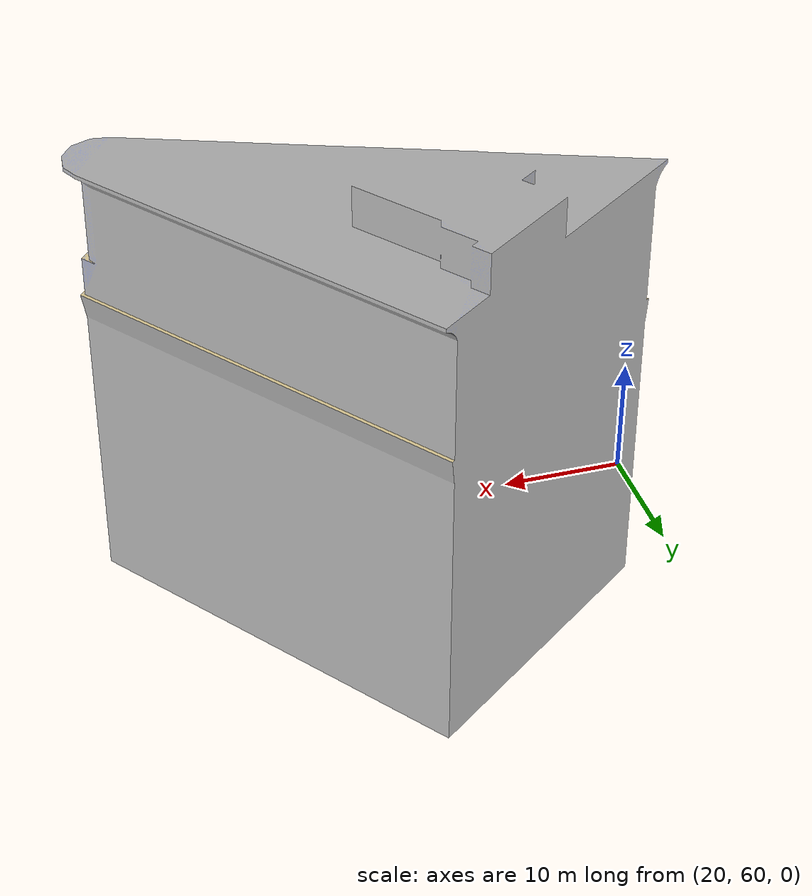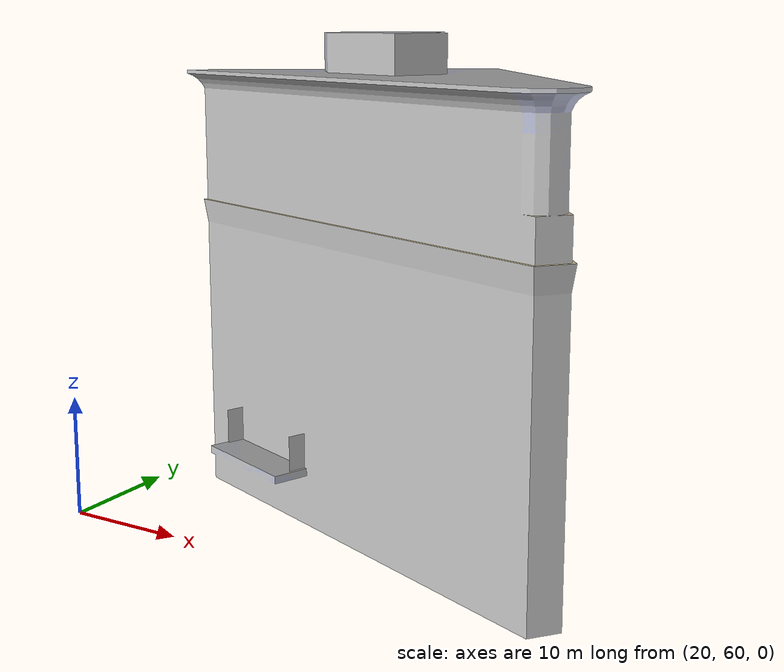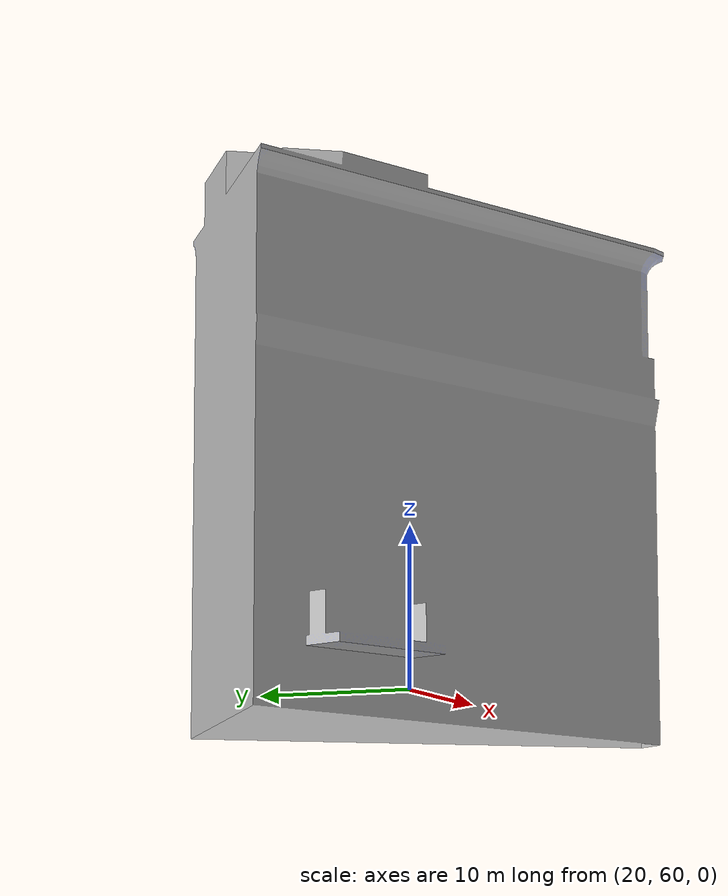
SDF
<?xml version="1.0" ?>
<sdf version="1.5">
  <model name="House 4">
    <link name="link">
      <collision name="collision">
        <geometry>
          <mesh>
            <uri>model://house_4/meshes/BulfinchHotel.dae</uri>
          </mesh>
        </geometry>
      </collision>
      <visual name="visual">
        <geometry>
          <mesh>
            <uri>model://house_4/meshes/BulfinchHotel.dae</uri>
          </mesh>
        </geometry>
      </visual>
    </link>
  </model>
</sdf>
